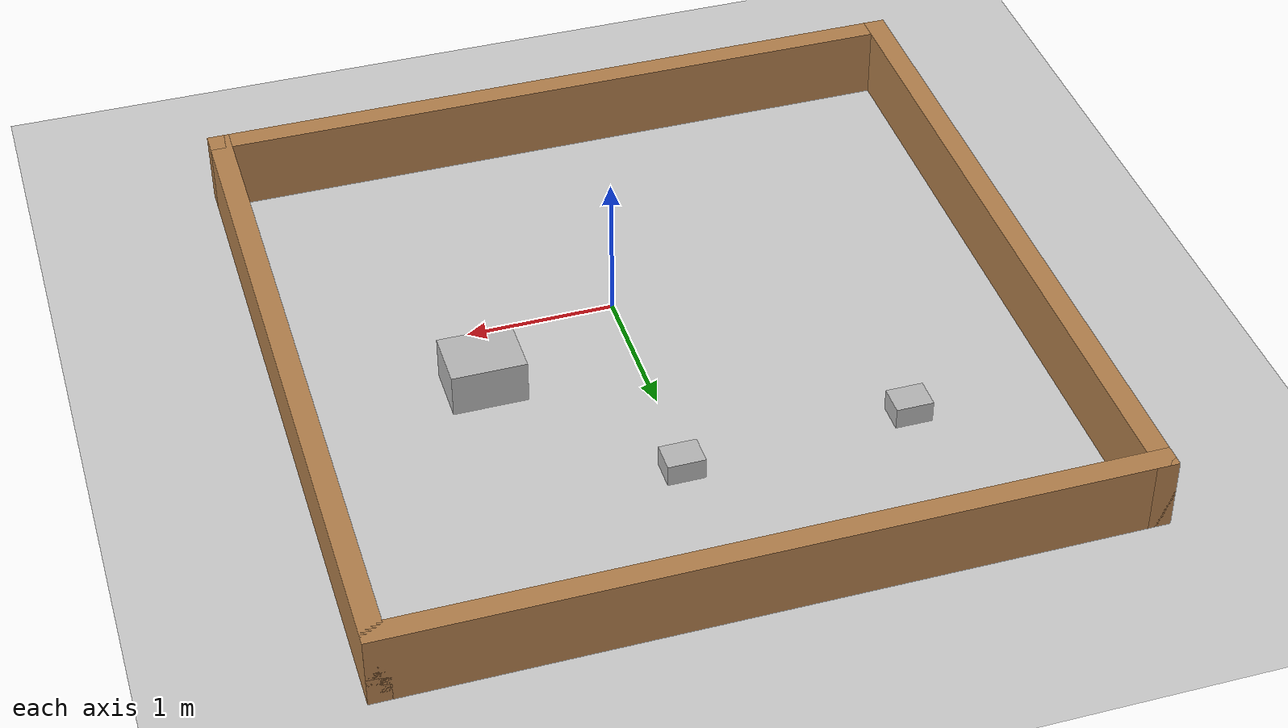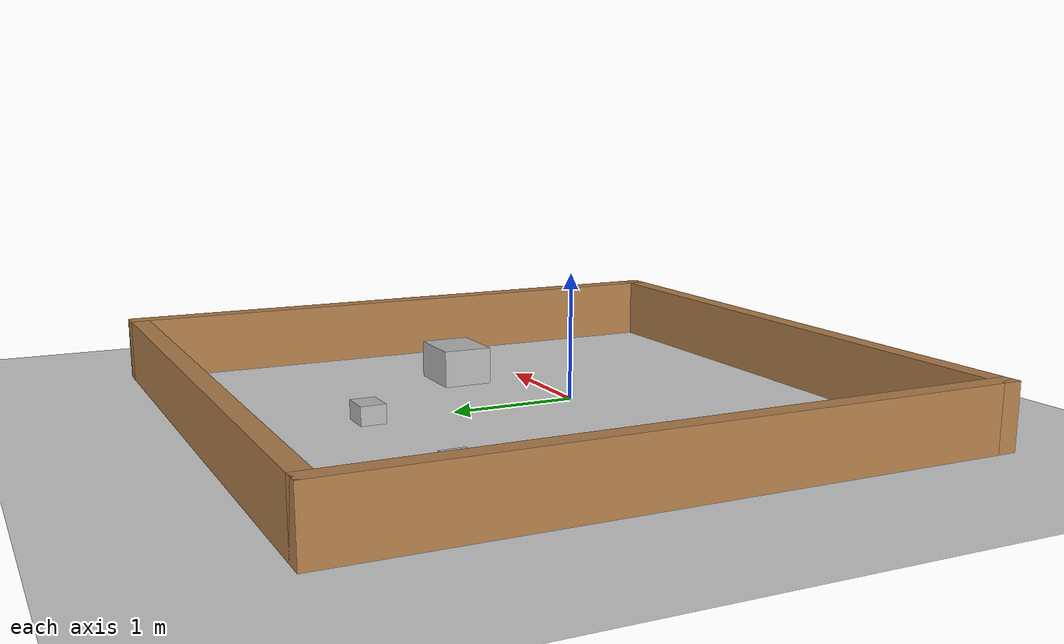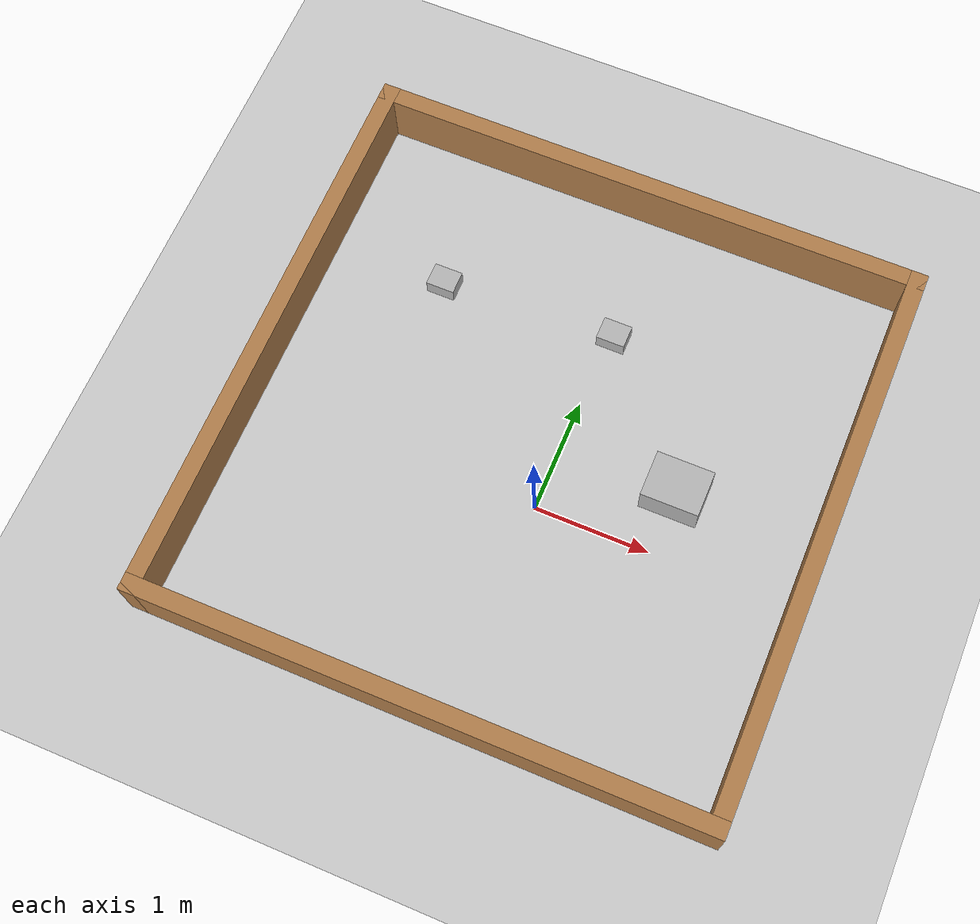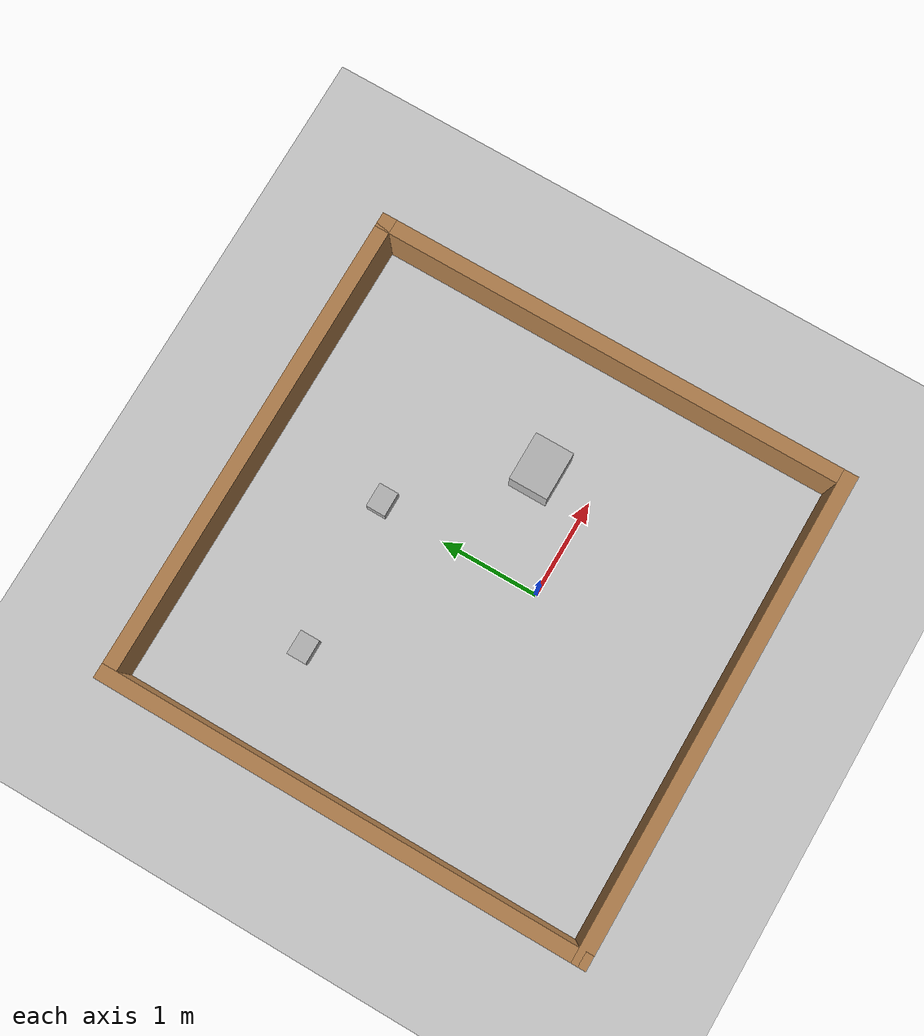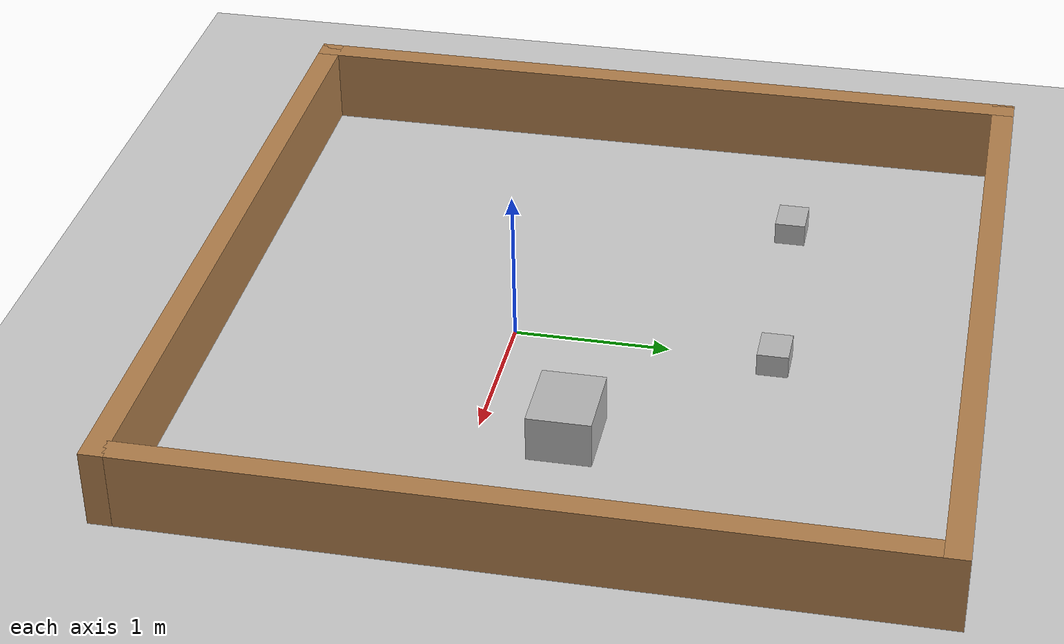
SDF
<sdf version='1.9'>
  <world name='empty'>
    <physics name='1ms' type='ignored'>
      <max_step_size>0.001</max_step_size>
      <real_time_factor>1</real_time_factor>
      <real_time_update_rate>1000</real_time_update_rate>
    </physics>
    <plugin name='gz::sim::systems::Physics' filename='ignition-gazebo-physics-system'/>
    <plugin name='gz::sim::systems::UserCommands' filename='ignition-gazebo-user-commands-system'/>
    <plugin name='gz::sim::systems::SceneBroadcaster' filename='ignition-gazebo-scene-broadcaster-system'/>
    <plugin name='gz::sim::systems::Contact' filename='ignition-gazebo-contact-system'/>
    <gravity>0 0 -9.8</gravity>
    <magnetic_field>6e-06 2.3e-05 -4.2e-05</magnetic_field>
    <atmosphere type='adiabatic'/>
    <scene>
      <ambient>0.4 0.4 0.4 1</ambient>
      <background>0.7 0.7 0.7 1</background>
      <shadows>true</shadows>
    </scene>
    <model name='ground_plane'>
      <static>true</static>
      <link name='link'>
        <collision name='collision'>
          <geometry>
            <plane>
              <normal>0 0 1</normal>
              <size>100 100</size>
            </plane>
          </geometry>
          <surface>
            <friction>
              <ode/>
            </friction>
            <bounce/>
            <contact/>
          </surface>
        </collision>
        <visual name='visual'>
          <geometry>
            <plane>
              <normal>0 0 1</normal>
              <size>100 100</size>
            </plane>
          </geometry>
          <material>
            <ambient>0.8 0.8 0.8 1</ambient>
            <diffuse>0.8 0.8 0.8 1</diffuse>
            <specular>0.8 0.8 0.8 1</specular>
          </material>
        </visual>
        <pose>0 0 0 0 -0 0</pose>
        <inertial>
          <pose>0 0 0 0 -0 0</pose>
          <mass>1</mass>
          <inertia>
            <ixx>1</ixx>
            <ixy>0</ixy>
            <ixz>0</ixz>
            <iyy>1</iyy>
            <iyz>0</iyz>
            <izz>1</izz>
          </inertia>
        </inertial>
        <enable_wind>false</enable_wind>
      </link>
      <pose>0 0 0 0 -0 0</pose>
      <self_collide>false</self_collide>
    </model>
    <model name='turtlebot3_square'>
      <pose>-0.165466 0.499382 0 0 -0 0</pose>
      <link name='Wall_1'>
        <collision name='Wall_1_Collision'>
          <geometry>
            <box>
              <size>5 0.15 0.5</size>
            </box>
          </geometry>
          <pose>0 0 0.25 0 -0 0</pose>
          <max_contacts>10</max_contacts>
          <surface>
            <contact>
              <ode/>
            </contact>
            <bounce/>
            <friction>
              <torsional>
                <ode/>
              </torsional>
              <ode/>
            </friction>
          </surface>
        </collision>
        <visual name='Wall_1_Visual'>
          <pose>0 0 0.25 0 -0 0</pose>
          <geometry>
            <box>
              <size>5 0.15 0.5</size>
            </box>
          </geometry>
          <material>
            <script>
              <uri>file://media/materials/scripts/gazebo.material</uri>
              <name>Gazebo/Wood</name>
            </script>
            <ambient>1 1 1 1</ambient>
          </material>
        </visual>
        <pose>-2.425 0 0 0 -0 1.5708</pose>
        <self_collide>false</self_collide>
        <enable_wind>false</enable_wind>
        <kinematic>false</kinematic>
        <inertial>
          <pose>0 0 0 0 -0 0</pose>
          <mass>1</mass>
          <inertia>
            <ixx>1</ixx>
            <ixy>0</ixy>
            <ixz>0</ixz>
            <iyy>1</iyy>
            <iyz>0</iyz>
            <izz>1</izz>
          </inertia>
        </inertial>
      </link>
      <link name='Wall_2'>
        <collision name='Wall_2_Collision'>
          <geometry>
            <box>
              <size>5 0.15 0.5</size>
            </box>
          </geometry>
          <pose>0 0 0.25 0 -0 0</pose>
          <max_contacts>10</max_contacts>
          <surface>
            <contact>
              <ode/>
            </contact>
            <bounce/>
            <friction>
              <torsional>
                <ode/>
              </torsional>
              <ode/>
            </friction>
          </surface>
        </collision>
        <visual name='Wall_2_Visual'>
          <pose>0 0 0.25 0 -0 0</pose>
          <geometry>
            <box>
              <size>5 0.15 0.5</size>
            </box>
          </geometry>
          <material>
            <script>
              <uri>file://media/materials/scripts/gazebo.material</uri>
              <name>Gazebo/Wood</name>
            </script>
            <ambient>1 1 1 1</ambient>
          </material>
        </visual>
        <pose>0 2.425 0 0 0 -0</pose>
        <self_collide>false</self_collide>
        <enable_wind>false</enable_wind>
        <kinematic>false</kinematic>
        <inertial>
          <pose>0 0 0 0 -0 0</pose>
          <mass>1</mass>
          <inertia>
            <ixx>1</ixx>
            <ixy>0</ixy>
            <ixz>0</ixz>
            <iyy>1</iyy>
            <iyz>0</iyz>
            <izz>1</izz>
          </inertia>
        </inertial>
      </link>
      <link name='Wall_3'>
        <collision name='Wall_3_Collision'>
          <geometry>
            <box>
              <size>5 0.15 0.5</size>
            </box>
          </geometry>
          <pose>0 0 0.25 0 -0 0</pose>
          <max_contacts>10</max_contacts>
          <surface>
            <contact>
              <ode/>
            </contact>
            <bounce/>
            <friction>
              <torsional>
                <ode/>
              </torsional>
              <ode/>
            </friction>
          </surface>
        </collision>
        <visual name='Wall_3_Visual'>
          <pose>0 0 0.25 0 -0 0</pose>
          <geometry>
            <box>
              <size>5 0.15 0.5</size>
            </box>
          </geometry>
          <material>
            <script>
              <uri>file://media/materials/scripts/gazebo.material</uri>
              <name>Gazebo/Wood</name>
            </script>
            <ambient>1 1 1 1</ambient>
          </material>
        </visual>
        <pose>2.425 -0 0 0 0 -1.5708</pose>
        <self_collide>false</self_collide>
        <enable_wind>false</enable_wind>
        <kinematic>false</kinematic>
        <inertial>
          <pose>0 0 0 0 -0 0</pose>
          <mass>1</mass>
          <inertia>
            <ixx>1</ixx>
            <ixy>0</ixy>
            <ixz>0</ixz>
            <iyy>1</iyy>
            <iyz>0</iyz>
            <izz>1</izz>
          </inertia>
        </inertial>
      </link>
      <link name='Wall_4'>
        <collision name='Wall_4_Collision'>
          <geometry>
            <box>
              <size>5 0.15 0.5</size>
            </box>
          </geometry>
          <pose>0 0 0.25 0 -0 0</pose>
          <max_contacts>10</max_contacts>
          <surface>
            <contact>
              <ode/>
            </contact>
            <bounce/>
            <friction>
              <torsional>
                <ode/>
              </torsional>
              <ode/>
            </friction>
          </surface>
        </collision>
        <visual name='Wall_4_Visual'>
          <pose>0 0 0.25 0 -0 0</pose>
          <geometry>
            <box>
              <size>5 0.15 0.5</size>
            </box>
          </geometry>
          <material>
            <script>
              <uri>file://media/materials/scripts/gazebo.material</uri>
              <name>Gazebo/Wood</name>
            </script>
            <ambient>1 1 1 1</ambient>
          </material>
        </visual>
        <pose>-0 -2.425 0 0 -0 3.14159</pose>
        <self_collide>false</self_collide>
        <enable_wind>false</enable_wind>
        <kinematic>false</kinematic>
        <inertial>
          <pose>0 0 0 0 -0 0</pose>
          <mass>1</mass>
          <inertia>
            <ixx>1</ixx>
            <ixy>0</ixy>
            <ixz>0</ixz>
            <iyy>1</iyy>
            <iyz>0</iyz>
            <izz>1</izz>
          </inertia>
        </inertial>
      </link>
      <static>true</static>
      <self_collide>false</self_collide>
    </model>
    <model name='cardboard_box'>
      <pose>1.02883 0.542919 0.149999 -0 0 0</pose>
      <link name='link'>
        <inertial>
          <mass>2</mass>
          <inertia>
            <ixx>0.041666700000000001</ixx>
            <ixy>0</ixy>
            <ixz>0</ixz>
            <iyy>0.0566667</iyy>
            <iyz>0</iyz>
            <izz>0.0683333</izz>
          </inertia>
          <pose>0 0 0 0 -0 0</pose>
        </inertial>
        <collision name='collision'>
          <geometry>
            <box>
              <size>0.5 0.4 0.3</size>
            </box>
          </geometry>
          <surface>
            <friction>
              <ode>
                <mu>1</mu>
                <mu2>1</mu2>
              </ode>
              <torsional>
                <ode/>
              </torsional>
            </friction>
            <contact>
              <ode>
                <kp>10000000</kp>
                <kd>1</kd>
                <min_depth>0.001</min_depth>
                <max_vel>0.10000000000000001</max_vel>
              </ode>
            </contact>
            <bounce/>
          </surface>
          <max_contacts>10</max_contacts>
        </collision>
        <visual name='visual'>
          <pose>0 0 -0.15 0 -0 0</pose>
          <geometry>
            <mesh>
              <uri>file:///home/ega/rebet_ws/install/rebet_frog/share/rebet_frog/worlds/model://cardboard_box/meshes/cardboard_box.dae</uri>
              <scale>1.25932 1.00745 0.755591</scale>
            </mesh>
          </geometry>
        </visual>
        <self_collide>false</self_collide>
        <enable_wind>false</enable_wind>
        <kinematic>false</kinematic>
        <pose>0 0 0 0 -0 0</pose>
      </link>
      <static>false</static>
      <self_collide>false</self_collide>
    </model>
    <model name='cardboard_box_smaller_1'>
      <pose>-1.49971 1.59531 0.074999 0 -0 0</pose>
      <link name='link'>
        <inertial>
          <mass>0.5</mass>
          <inertia>
            <ixx>0.010416699999999999</ixx>
            <ixy>0</ixy>
            <ixz>0</ixz>
            <iyy>0.014166700000000001</iyy>
            <iyz>0</iyz>
            <izz>0.017083299999999999</izz>
          </inertia>
          <pose>0 0 0 0 -0 0</pose>
        </inertial>
        <collision name='collision'>
          <geometry>
            <box>
              <size>0.25 0.2 0.15</size>
            </box>
          </geometry>
          <surface>
            <friction>
              <ode>
                <mu>1</mu>
                <mu2>1</mu2>
              </ode>
              <torsional>
                <ode/>
              </torsional>
            </friction>
            <contact>
              <ode>
                <kp>10000000</kp>
                <kd>1</kd>
                <min_depth>0.001</min_depth>
                <max_vel>0.10000000000000001</max_vel>
              </ode>
            </contact>
            <bounce/>
          </surface>
          <max_contacts>10</max_contacts>
        </collision>
        <visual name='visual'>
          <pose>0 0 -0.075 0 -0 0</pose>
          <geometry>
            <mesh>
              <uri>file:///home/ega/rebet_ws/install/rebet_frog/share/rebet_frog/worlds/model://cardboard_box/meshes/cardboard_box.dae</uri>
              <scale>0.629659 0.503728 0.377796</scale>
            </mesh>
          </geometry>
        </visual>
        <self_collide>false</self_collide>
        <enable_wind>false</enable_wind>
        <kinematic>false</kinematic>
        <pose>0 0 0 0 -0 0</pose>
      </link>
      <static>false</static>
      <self_collide>false</self_collide>
    </model>
    <model name='cardboard_box_smaller_7'>
      <pose>0.041545 1.6738 0.075 0 -0 -0</pose>
      <link name='link'>
        <inertial>
          <mass>0.5</mass>
          <inertia>
            <ixx>0.010416699999999999</ixx>
            <ixy>0</ixy>
            <ixz>0</ixz>
            <iyy>0.014166700000000001</iyy>
            <iyz>0</iyz>
            <izz>0.017083299999999999</izz>
          </inertia>
          <pose>0 0 0 0 -0 0</pose>
        </inertial>
        <collision name='collision'>
          <geometry>
            <box>
              <size>0.25 0.2 0.15</size>
            </box>
          </geometry>
          <surface>
            <friction>
              <ode>
                <mu>1</mu>
                <mu2>1</mu2>
              </ode>
              <torsional>
                <ode/>
              </torsional>
            </friction>
            <contact>
              <ode>
                <kp>10000000</kp>
                <kd>1</kd>
                <min_depth>0.001</min_depth>
                <max_vel>0.10000000000000001</max_vel>
              </ode>
            </contact>
            <bounce/>
          </surface>
          <max_contacts>10</max_contacts>
        </collision>
        <visual name='visual'>
          <pose>0 0 -0.075 0 -0 0</pose>
          <geometry>
            <mesh>
              <uri>file:///home/ega/rebet_ws/install/rebet_frog/share/rebet_frog/worlds/model://cardboard_box/meshes/cardboard_box.dae</uri>
              <scale>0.629659 0.503728 0.377796</scale>
            </mesh>
          </geometry>
        </visual>
        <self_collide>false</self_collide>
        <enable_wind>false</enable_wind>
        <kinematic>false</kinematic>
        <pose>0 0 0 0 -0 0</pose>
      </link>
      <static>false</static>
      <self_collide>false</self_collide>
    </model>
    <light name='sun' type='directional'>
      <pose>0 0 10 0 -0 0</pose>
      <cast_shadows>true</cast_shadows>
      <intensity>1</intensity>
      <direction>-0.5 0.1 -0.9</direction>
      <diffuse>0.8 0.8 0.8 1</diffuse>
      <specular>0.2 0.2 0.2 1</specular>
      <attenuation>
        <range>1000</range>
        <linear>0.01</linear>
        <constant>0.90000000000000002</constant>
        <quadratic>0.001</quadratic>
      </attenuation>
      <spot>
        <inner_angle>0</inner_angle>
        <outer_angle>0</outer_angle>
        <falloff>0</falloff>
      </spot>
    </light>
  </world>
</sdf>
